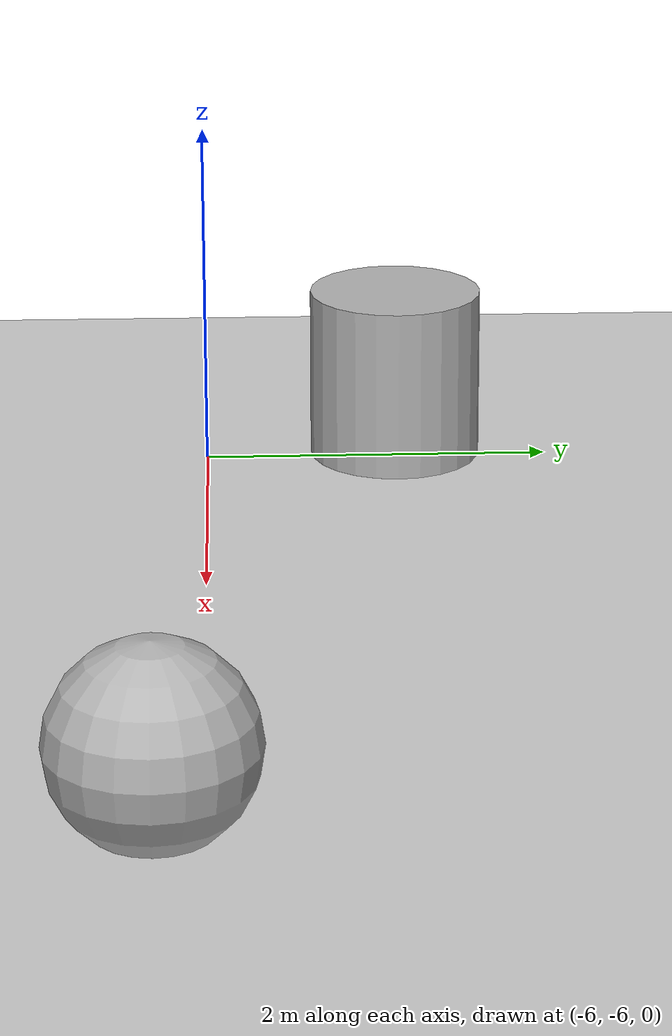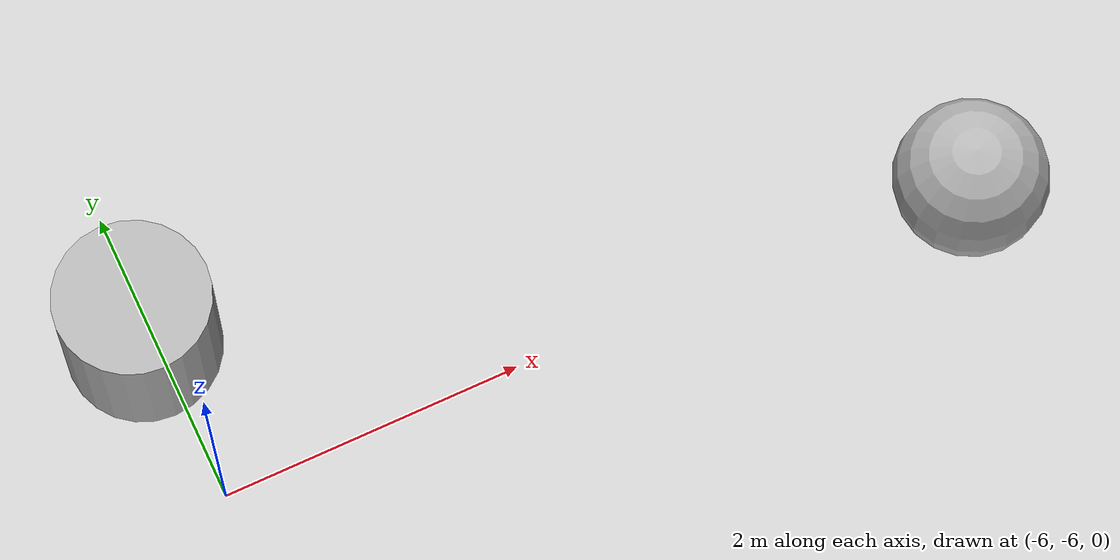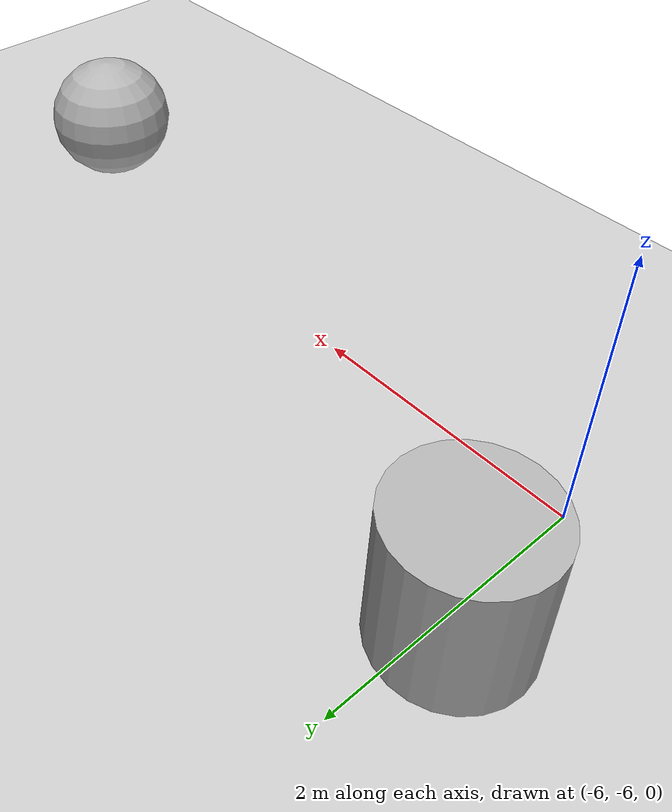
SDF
<sdf version="1.10">
 <world name="ackermann_steering">
  <model name="ground_plane">
   <static>true</static>
   <link name="link">
    <collision name="collision">
     <geometry><plane><normal>0 0 1</normal><size>100 100</size></plane></geometry>
     <surface>
      <friction>
       <ode><mu>50</mu></ode>
       <bullet><friction>1</friction><rolling_friction>0.10000000000000001</rolling_friction></bullet>
      </friction>
     </surface>
    </collision>
    <visual name="visual">
     <geometry><plane><normal>0 0 1</normal><size>100 100</size></plane></geometry>
     <material>
      <ambient>0.800000012 0.800000012 0.800000012 1</ambient>
      <diffuse>0.800000012 0.800000012 0.800000012 1</diffuse>
      <specular>0.800000012 0.800000012 0.800000012 1</specular>
     </material>
    </visual>
    <inertial>
     <mass>1</mass>
     <inertia><ixx>1</ixx><ixy>0</ixy><ixz>0</ixz><iyy>1</iyy><iyz>0</iyz><izz>1</izz></inertia>
    </inertial>
   </link>
  </model>
  <model name="cylinder_0">
   <pose>-6.0745697021484375 -4.8852300643920898 0.5 0 0 0</pose>
   <link name="cylinder_link">
    <inertial>
     <inertia>
      <ixx>0.14580000000000001</ixx>
      <ixy>0</ixy>
      <ixz>0</ixz>
      <iyy>0.14580000000000001</iyy>
      <iyz>0</iyz>
      <izz>0.125</izz>
     </inertia>
     <mass>1</mass>
    </inertial>
    <collision name="cylinder_collision">
     <geometry><cylinder><radius>0.5</radius><length>1</length></cylinder></geometry>
    </collision>
    <visual name="cylinder_visual">
     <geometry><cylinder><radius>0.5</radius><length>1</length></cylinder></geometry>
     <material>
      <ambient>0.300000012 0.300000012 0.300000012 1</ambient>
      <diffuse>0.699999988 0.699999988 0.699999988 1</diffuse>
      <specular>1 1 1 1</specular>
     </material>
    </visual>
   </link>
   <static>false</static>
  </model>
  <model name="sphere_0">
   <pose>-0.95161402225494385 -6.2104778289794922 0.5 0 0 0</pose>
   <link name="sphere_link">
    <inertial>
     <inertia>
      <ixx>0.10000000000000001</ixx>
      <ixy>0</ixy>
      <ixz>0</ixz>
      <iyy>0.10000000000000001</iyy>
      <iyz>0</iyz>
      <izz>0.10000000000000001</izz>
     </inertia>
     <mass>1</mass>
    </inertial>
    <collision name="sphere_collision"><geometry><sphere><radius>0.5</radius></sphere></geometry></collision>
    <visual name="sphere_visual">
     <geometry><sphere><radius>0.5</radius></sphere></geometry>
     <material>
      <ambient>0.300000012 0.300000012 0.300000012 1</ambient>
      <diffuse>0.699999988 0.699999988 0.699999988 1</diffuse>
      <specular>1 1 1 1</specular>
     </material>
    </visual>
   </link>
   <static>false</static>
  </model>
 </world>
</sdf>
